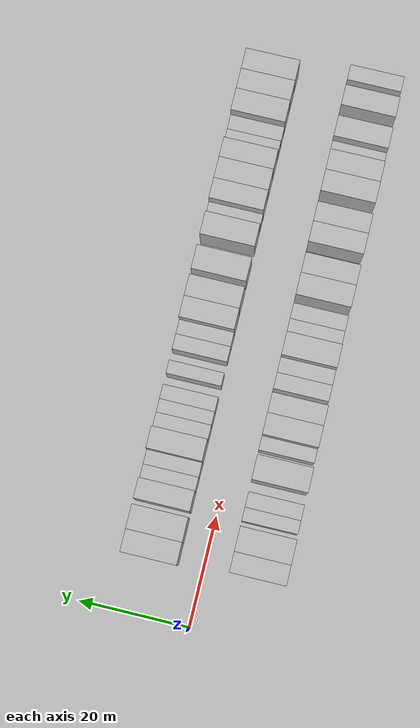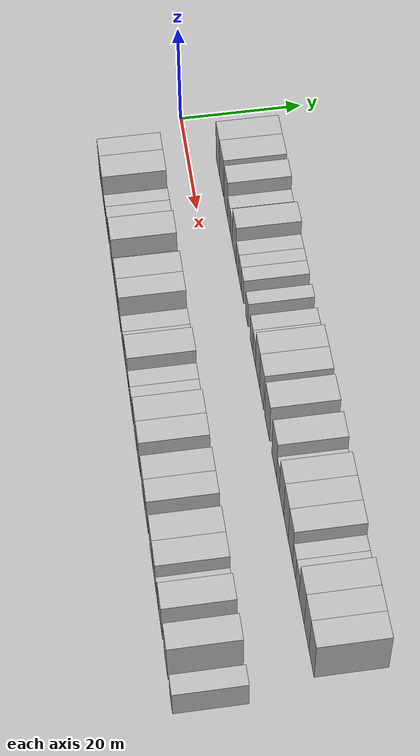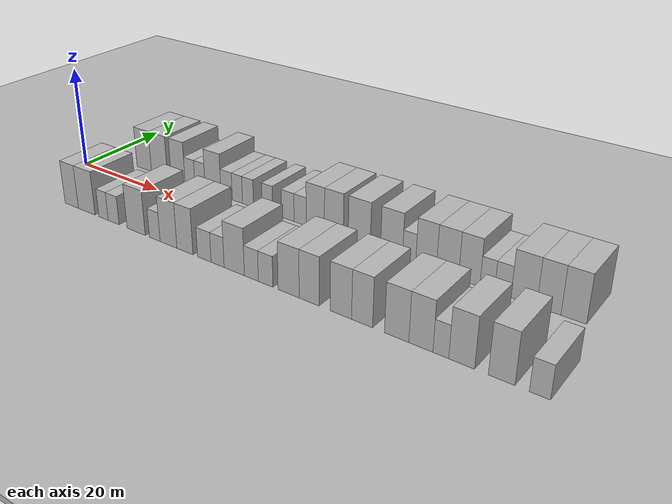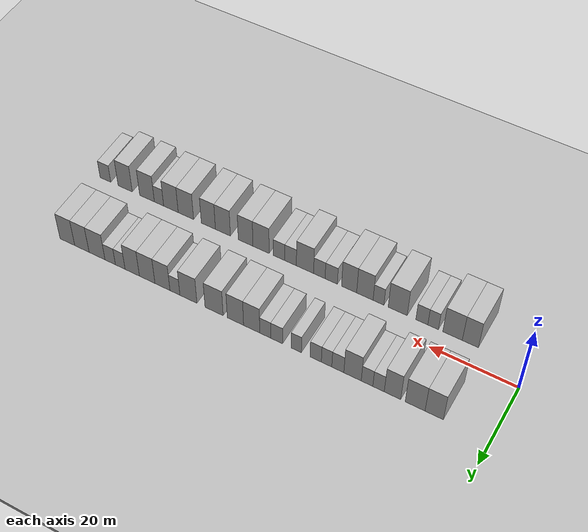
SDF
<sdf version="1.6">
 <world name="default">
  <include><name>ground_plane_1</name><uri>model://HANNAS_ground_plane</uri></include>
  <include>
   <name>ground_plane_2</name>
   <uri>model://HANNAS_ground_plane</uri>
   <pose>100 0 0  0 0 0</pose>
  </include>
  <model name="building_1">
   <static>1</static>
   <pose>12.0045 9.5000 0 0.000000 0.000000 1.570796</pose>
   <link name="link">
    <pose>0 0 4.50 0 0 0</pose>
    <collision name="collision"><geometry><box><size>10.0000 4.0090 9.0000</size></box></geometry></collision>
    <visual name="visual">
     <cast_shadows>0</cast_shadows>
     <geometry><box><size>10.0000 4.0090 9.0000</size></box></geometry>
     <material>
      <script>
       <uri>model://HANNAS_wall/materials/scripts</uri>
       <uri>model://HANNAS_wall/materials/textures</uri>
       <name>vrc/HANNAS_wall</name>
      </script>
     </material>
    </visual>
   </link>
  </model>
  <model name="building_2">
   <static>1</static>
   <pose>16.1920 9.5000 0 0.000000 0.000000 1.570796</pose>
   <link name="link">
    <pose>0 0 4.50 0 0 0</pose>
    <collision name="collision"><geometry><box><size>10.0000 4.3661 9.0000</size></box></geometry></collision>
    <visual name="visual">
     <cast_shadows>0</cast_shadows>
     <geometry><box><size>10.0000 4.3661 9.0000</size></box></geometry>
     <material>
      <script>
       <uri>model://HANNAS_wall/materials/scripts</uri>
       <uri>model://HANNAS_wall/materials/textures</uri>
       <name>vrc/HANNAS_wall</name>
      </script>
     </material>
    </visual>
   </link>
  </model>
  <model name="building_3">
   <static>1</static>
   <pose>21.2087 9.5000 0 0.000000 0.000000 1.570796</pose>
   <link name="link">
    <pose>0 0 4.50 0 0 0</pose>
    <collision name="collision"><geometry><box><size>10.0000 3.6673 9.0000</size></box></geometry></collision>
    <visual name="visual">
     <cast_shadows>0</cast_shadows>
     <geometry><box><size>10.0000 3.6673 9.0000</size></box></geometry>
     <material>
      <script>
       <uri>model://HANNAS_wall/materials/scripts</uri>
       <uri>model://HANNAS_wall/materials/textures</uri>
       <name>vrc/HANNAS_wall</name>
      </script>
     </material>
    </visual>
   </link>
  </model>
  <model name="building_4">
   <static>1</static>
   <pose>24.3245 9.5000 0 0.000000 0.000000 1.570796</pose>
   <link name="link">
    <pose>0 0 3.00 0 0 0</pose>
    <collision name="collision"><geometry><box><size>10.0000 2.5643 6.0000</size></box></geometry></collision>
    <visual name="visual">
     <cast_shadows>0</cast_shadows>
     <geometry><box><size>10.0000 2.5643 6.0000</size></box></geometry>
     <material>
      <script>
       <uri>model://HANNAS_wall/materials/scripts</uri>
       <uri>model://HANNAS_wall/materials/textures</uri>
       <name>vrc/HANNAS_wall</name>
      </script>
     </material>
    </visual>
   </link>
  </model>
  <model name="building_5">
   <static>1</static>
   <pose>26.9163 9.5000 0 0.000000 0.000000 1.570796</pose>
   <link name="link">
    <pose>0 0 3.00 0 0 0</pose>
    <collision name="collision"><geometry><box><size>10.0000 2.6194 6.0000</size></box></geometry></collision>
    <visual name="visual">
     <cast_shadows>0</cast_shadows>
     <geometry><box><size>10.0000 2.6194 6.0000</size></box></geometry>
     <material>
      <script>
       <uri>model://HANNAS_wall/materials/scripts</uri>
       <uri>model://HANNAS_wall/materials/textures</uri>
       <name>vrc/HANNAS_wall</name>
      </script>
     </material>
    </visual>
   </link>
  </model>
  <model name="building_6">
   <static>1</static>
   <pose>30.2056 9.5000 0 0.000000 0.000000 1.570796</pose>
   <link name="link">
    <pose>0 0 4.50 0 0 0</pose>
    <collision name="collision"><geometry><box><size>10.0000 3.9591 9.0000</size></box></geometry></collision>
    <visual name="visual">
     <cast_shadows>0</cast_shadows>
     <geometry><box><size>10.0000 3.9591 9.0000</size></box></geometry>
     <material>
      <script>
       <uri>model://HANNAS_wall/materials/scripts</uri>
       <uri>model://HANNAS_wall/materials/textures</uri>
       <name>vrc/HANNAS_wall</name>
      </script>
     </material>
    </visual>
   </link>
  </model>
  <model name="building_7">
   <static>1</static>
   <pose>33.5692 9.5000 0 0.000000 0.000000 1.570796</pose>
   <link name="link">
    <pose>0 0 3.00 0 0 0</pose>
    <collision name="collision"><geometry><box><size>10.0000 2.7680 6.0000</size></box></geometry></collision>
    <visual name="visual">
     <cast_shadows>0</cast_shadows>
     <geometry><box><size>10.0000 2.7680 6.0000</size></box></geometry>
     <material>
      <script>
       <uri>model://HANNAS_wall/materials/scripts</uri>
       <uri>model://HANNAS_wall/materials/textures</uri>
       <name>vrc/HANNAS_wall</name>
      </script>
     </material>
    </visual>
   </link>
  </model>
  <model name="building_8">
   <static>1</static>
   <pose>36.1631 9.5000 0 0.000000 0.000000 1.570796</pose>
   <link name="link">
    <pose>0 0 3.00 0 0 0</pose>
    <collision name="collision"><geometry><box><size>10.0000 2.4198 6.0000</size></box></geometry></collision>
    <visual name="visual">
     <cast_shadows>0</cast_shadows>
     <geometry><box><size>10.0000 2.4198 6.0000</size></box></geometry>
     <material>
      <script>
       <uri>model://HANNAS_wall/materials/scripts</uri>
       <uri>model://HANNAS_wall/materials/textures</uri>
       <name>vrc/HANNAS_wall</name>
      </script>
     </material>
    </visual>
   </link>
  </model>
  <model name="building_9">
   <static>1</static>
   <pose>38.6890 9.5000 0 0.000000 0.000000 1.570796</pose>
   <link name="link">
    <pose>0 0 3.00 0 0 0</pose>
    <collision name="collision"><geometry><box><size>10.0000 2.6320 6.0000</size></box></geometry></collision>
    <visual name="visual">
     <cast_shadows>0</cast_shadows>
     <geometry><box><size>10.0000 2.6320 6.0000</size></box></geometry>
     <material>
      <script>
       <uri>model://HANNAS_wall/materials/scripts</uri>
       <uri>model://HANNAS_wall/materials/textures</uri>
       <name>vrc/HANNAS_wall</name>
      </script>
     </material>
    </visual>
   </link>
  </model>
  <model name="building_10">
   <static>1</static>
   <pose>43.2170 9.5000 0 0.000000 0.000000 1.570796</pose>
   <link name="link">
    <pose>0 0 3.00 0 0 0</pose>
    <collision name="collision"><geometry><box><size>10.0000 2.4241 6.0000</size></box></geometry></collision>
    <visual name="visual">
     <cast_shadows>0</cast_shadows>
     <geometry><box><size>10.0000 2.4241 6.0000</size></box></geometry>
     <material>
      <script>
       <uri>model://HANNAS_wall/materials/scripts</uri>
       <uri>model://HANNAS_wall/materials/textures</uri>
       <name>vrc/HANNAS_wall</name>
      </script>
     </material>
    </visual>
   </link>
  </model>
  <model name="building_11">
   <static>1</static>
   <pose>47.8303 9.5000 0 0.000000 0.000000 1.570796</pose>
   <link name="link">
    <pose>0 0 3.00 0 0 0</pose>
    <collision name="collision"><geometry><box><size>10.0000 2.8025 6.0000</size></box></geometry></collision>
    <visual name="visual">
     <cast_shadows>0</cast_shadows>
     <geometry><box><size>10.0000 2.8025 6.0000</size></box></geometry>
     <material>
      <script>
       <uri>model://HANNAS_wall/materials/scripts</uri>
       <uri>model://HANNAS_wall/materials/textures</uri>
       <name>vrc/HANNAS_wall</name>
      </script>
     </material>
    </visual>
   </link>
  </model>
  <model name="building_12">
   <static>1</static>
   <pose>50.5448 9.5000 0 0.000000 0.000000 1.570796</pose>
   <link name="link">
    <pose>0 0 3.00 0 0 0</pose>
    <collision name="collision"><geometry><box><size>10.0000 2.6265 6.0000</size></box></geometry></collision>
    <visual name="visual">
     <cast_shadows>0</cast_shadows>
     <geometry><box><size>10.0000 2.6265 6.0000</size></box></geometry>
     <material>
      <script>
       <uri>model://HANNAS_wall/materials/scripts</uri>
       <uri>model://HANNAS_wall/materials/textures</uri>
       <name>vrc/HANNAS_wall</name>
      </script>
     </material>
    </visual>
   </link>
  </model>
  <model name="building_13">
   <static>1</static>
   <pose>53.8044 9.5000 0 0.000000 0.000000 1.570796</pose>
   <link name="link">
    <pose>0 0 4.50 0 0 0</pose>
    <collision name="collision"><geometry><box><size>10.0000 3.8926 9.0000</size></box></geometry></collision>
    <visual name="visual">
     <cast_shadows>0</cast_shadows>
     <geometry><box><size>10.0000 3.8926 9.0000</size></box></geometry>
     <material>
      <script>
       <uri>model://HANNAS_wall/materials/scripts</uri>
       <uri>model://HANNAS_wall/materials/textures</uri>
       <name>vrc/HANNAS_wall</name>
      </script>
     </material>
    </visual>
   </link>
  </model>
  <model name="building_14">
   <static>1</static>
   <pose>57.7253 9.5000 0 0.000000 0.000000 1.570796</pose>
   <link name="link">
    <pose>0 0 4.50 0 0 0</pose>
    <collision name="collision"><geometry><box><size>10.0000 3.9492 9.0000</size></box></geometry></collision>
    <visual name="visual">
     <cast_shadows>0</cast_shadows>
     <geometry><box><size>10.0000 3.9492 9.0000</size></box></geometry>
     <material>
      <script>
       <uri>model://HANNAS_wall/materials/scripts</uri>
       <uri>model://HANNAS_wall/materials/textures</uri>
       <name>vrc/HANNAS_wall</name>
      </script>
     </material>
    </visual>
   </link>
  </model>
  <model name="building_15">
   <static>1</static>
   <pose>62.9188 9.5000 0 0.000000 0.000000 1.570796</pose>
   <link name="link">
    <pose>0 0 4.50 0 0 0</pose>
    <collision name="collision"><geometry><box><size>10.0000 4.4379 9.0000</size></box></geometry></collision>
    <visual name="visual">
     <cast_shadows>0</cast_shadows>
     <geometry><box><size>10.0000 4.4379 9.0000</size></box></geometry>
     <material>
      <script>
       <uri>model://HANNAS_wall/materials/scripts</uri>
       <uri>model://HANNAS_wall/materials/textures</uri>
       <name>vrc/HANNAS_wall</name>
      </script>
     </material>
    </visual>
   </link>
  </model>
  <model name="building_16">
   <static>1</static>
   <pose>69.2543 9.5000 0 0.000000 0.000000 1.570796</pose>
   <link name="link">
    <pose>0 0 4.50 0 0 0</pose>
    <collision name="collision"><geometry><box><size>10.0000 4.2331 9.0000</size></box></geometry></collision>
    <visual name="visual">
     <cast_shadows>0</cast_shadows>
     <geometry><box><size>10.0000 4.2331 9.0000</size></box></geometry>
     <material>
      <script>
       <uri>model://HANNAS_wall/materials/scripts</uri>
       <uri>model://HANNAS_wall/materials/textures</uri>
       <name>vrc/HANNAS_wall</name>
      </script>
     </material>
    </visual>
   </link>
  </model>
  <model name="building_17">
   <static>1</static>
   <pose>72.6155 9.5000 0 0.000000 0.000000 1.570796</pose>
   <link name="link">
    <pose>0 0 3.00 0 0 0</pose>
    <collision name="collision"><geometry><box><size>10.0000 2.4891 6.0000</size></box></geometry></collision>
    <visual name="visual">
     <cast_shadows>0</cast_shadows>
     <geometry><box><size>10.0000 2.4891 6.0000</size></box></geometry>
     <material>
      <script>
       <uri>model://HANNAS_wall/materials/scripts</uri>
       <uri>model://HANNAS_wall/materials/textures</uri>
       <name>vrc/HANNAS_wall</name>
      </script>
     </material>
    </visual>
   </link>
  </model>
  <model name="building_18">
   <static>1</static>
   <pose>75.7572 9.5000 0 0.000000 0.000000 1.570796</pose>
   <link name="link">
    <pose>0 0 4.50 0 0 0</pose>
    <collision name="collision"><geometry><box><size>10.0000 3.7943 9.0000</size></box></geometry></collision>
    <visual name="visual">
     <cast_shadows>0</cast_shadows>
     <geometry><box><size>10.0000 3.7943 9.0000</size></box></geometry>
     <material>
      <script>
       <uri>model://HANNAS_wall/materials/scripts</uri>
       <uri>model://HANNAS_wall/materials/textures</uri>
       <name>vrc/HANNAS_wall</name>
      </script>
     </material>
    </visual>
   </link>
  </model>
  <model name="building_19">
   <static>1</static>
   <pose>79.6302 9.5000 0 0.000000 0.000000 1.570796</pose>
   <link name="link">
    <pose>0 0 4.50 0 0 0</pose>
    <collision name="collision"><geometry><box><size>10.0000 3.9518 9.0000</size></box></geometry></collision>
    <visual name="visual">
     <cast_shadows>0</cast_shadows>
     <geometry><box><size>10.0000 3.9518 9.0000</size></box></geometry>
     <material>
      <script>
       <uri>model://HANNAS_wall/materials/scripts</uri>
       <uri>model://HANNAS_wall/materials/textures</uri>
       <name>vrc/HANNAS_wall</name>
      </script>
     </material>
    </visual>
   </link>
  </model>
  <model name="building_20">
   <static>1</static>
   <pose>83.4527 9.5000 0 0.000000 0.000000 1.570796</pose>
   <link name="link">
    <pose>0 0 4.50 0 0 0</pose>
    <collision name="collision"><geometry><box><size>10.0000 3.6931 9.0000</size></box></geometry></collision>
    <visual name="visual">
     <cast_shadows>0</cast_shadows>
     <geometry><box><size>10.0000 3.6931 9.0000</size></box></geometry>
     <material>
      <script>
       <uri>model://HANNAS_wall/materials/scripts</uri>
       <uri>model://HANNAS_wall/materials/textures</uri>
       <name>vrc/HANNAS_wall</name>
      </script>
     </material>
    </visual>
   </link>
  </model>
  <model name="building_21">
   <static>1</static>
   <pose>86.5423 9.5000 0 0.000000 0.000000 1.570796</pose>
   <link name="link">
    <pose>0 0 3.00 0 0 0</pose>
    <collision name="collision"><geometry><box><size>10.0000 2.4860 6.0000</size></box></geometry></collision>
    <visual name="visual">
     <cast_shadows>0</cast_shadows>
     <geometry><box><size>10.0000 2.4860 6.0000</size></box></geometry>
     <material>
      <script>
       <uri>model://HANNAS_wall/materials/scripts</uri>
       <uri>model://HANNAS_wall/materials/textures</uri>
       <name>vrc/HANNAS_wall</name>
      </script>
     </material>
    </visual>
   </link>
  </model>
  <model name="building_22">
   <static>1</static>
   <pose>89.1378 9.5000 0 0.000000 0.000000 1.570796</pose>
   <link name="link">
    <pose>0 0 3.00 0 0 0</pose>
    <collision name="collision"><geometry><box><size>10.0000 2.7049 6.0000</size></box></geometry></collision>
    <visual name="visual">
     <cast_shadows>0</cast_shadows>
     <geometry><box><size>10.0000 2.7049 6.0000</size></box></geometry>
     <material>
      <script>
       <uri>model://HANNAS_wall/materials/scripts</uri>
       <uri>model://HANNAS_wall/materials/textures</uri>
       <name>vrc/HANNAS_wall</name>
      </script>
     </material>
    </visual>
   </link>
  </model>
  <model name="building_23">
   <static>1</static>
   <pose>92.5736 9.5000 0 0.000000 0.000000 1.570796</pose>
   <link name="link">
    <pose>0 0 4.50 0 0 0</pose>
    <collision name="collision"><geometry><box><size>10.0000 4.1667 9.0000</size></box></geometry></collision>
    <visual name="visual">
     <cast_shadows>0</cast_shadows>
     <geometry><box><size>10.0000 4.1667 9.0000</size></box></geometry>
     <material>
      <script>
       <uri>model://HANNAS_wall/materials/scripts</uri>
       <uri>model://HANNAS_wall/materials/textures</uri>
       <name>vrc/HANNAS_wall</name>
      </script>
     </material>
    </visual>
   </link>
  </model>
  <model name="building_24">
   <static>1</static>
   <pose>96.5496 9.5000 0 0.000000 0.000000 1.570796</pose>
   <link name="link">
    <pose>0 0 4.50 0 0 0</pose>
    <collision name="collision"><geometry><box><size>10.0000 3.7852 9.0000</size></box></geometry></collision>
    <visual name="visual">
     <cast_shadows>0</cast_shadows>
     <geometry><box><size>10.0000 3.7852 9.0000</size></box></geometry>
     <material>
      <script>
       <uri>model://HANNAS_wall/materials/scripts</uri>
       <uri>model://HANNAS_wall/materials/textures</uri>
       <name>vrc/HANNAS_wall</name>
      </script>
     </material>
    </visual>
   </link>
  </model>
  <model name="building_25">
   <static>1</static>
   <pose>100.3925 9.5000 0 0.000000 0.000000 1.570796</pose>
   <link name="link">
    <pose>0 0 4.50 0 0 0</pose>
    <collision name="collision"><geometry><box><size>10.0000 3.9007 9.0000</size></box></geometry></collision>
    <visual name="visual">
     <cast_shadows>0</cast_shadows>
     <geometry><box><size>10.0000 3.9007 9.0000</size></box></geometry>
     <material>
      <script>
       <uri>model://HANNAS_wall/materials/scripts</uri>
       <uri>model://HANNAS_wall/materials/textures</uri>
       <name>vrc/HANNAS_wall</name>
      </script>
     </material>
    </visual>
   </link>
  </model>
  <model name="building_50">
   <static>1</static>
   <pose>12.8146 -9.5000 0 0.000000 0.000000 1.570796</pose>
   <link name="link">
    <pose>0 0 4.50 0 0 0</pose>
    <collision name="collision"><geometry><box><size>10.0000 3.6291 9.0000</size></box></geometry></collision>
    <visual name="visual">
     <cast_shadows>0</cast_shadows>
     <geometry><box><size>10.0000 3.6291 9.0000</size></box></geometry>
     <material>
      <script>
       <uri>model://HANNAS_wall/materials/scripts</uri>
       <uri>model://HANNAS_wall/materials/textures</uri>
       <name>vrc/HANNAS_wall</name>
      </script>
     </material>
    </visual>
   </link>
  </model>
  <model name="building_51">
   <static>1</static>
   <pose>16.8435 -9.5000 0 0.000000 0.000000 1.570796</pose>
   <link name="link">
    <pose>0 0 4.50 0 0 0</pose>
    <collision name="collision"><geometry><box><size>10.0000 4.4288 9.0000</size></box></geometry></collision>
    <visual name="visual">
     <cast_shadows>0</cast_shadows>
     <geometry><box><size>10.0000 4.4288 9.0000</size></box></geometry>
     <material>
      <script>
       <uri>model://HANNAS_wall/materials/scripts</uri>
       <uri>model://HANNAS_wall/materials/textures</uri>
       <name>vrc/HANNAS_wall</name>
      </script>
     </material>
    </visual>
   </link>
  </model>
  <model name="building_52">
   <static>1</static>
   <pose>21.2728 -9.5000 0 0.000000 0.000000 1.570796</pose>
   <link name="link">
    <pose>0 0 3.00 0 0 0</pose>
    <collision name="collision"><geometry><box><size>10.0000 2.4298 6.0000</size></box></geometry></collision>
    <visual name="visual">
     <cast_shadows>0</cast_shadows>
     <geometry><box><size>10.0000 2.4298 6.0000</size></box></geometry>
     <material>
      <script>
       <uri>model://HANNAS_wall/materials/scripts</uri>
       <uri>model://HANNAS_wall/materials/textures</uri>
       <name>vrc/HANNAS_wall</name>
      </script>
     </material>
    </visual>
   </link>
  </model>
  <model name="building_53">
   <static>1</static>
   <pose>23.8699 -9.5000 0 0.000000 0.000000 1.570796</pose>
   <link name="link">
    <pose>0 0 3.00 0 0 0</pose>
    <collision name="collision"><geometry><box><size>10.0000 2.7645 6.0000</size></box></geometry></collision>
    <visual name="visual">
     <cast_shadows>0</cast_shadows>
     <geometry><box><size>10.0000 2.7645 6.0000</size></box></geometry>
     <material>
      <script>
       <uri>model://HANNAS_wall/materials/scripts</uri>
       <uri>model://HANNAS_wall/materials/textures</uri>
       <name>vrc/HANNAS_wall</name>
      </script>
     </material>
    </visual>
   </link>
  </model>
  <model name="building_54">
   <static>1</static>
   <pose>29.4754 -9.5000 0 0.000000 0.000000 1.570796</pose>
   <link name="link">
    <pose>0 0 4.50 0 0 0</pose>
    <collision name="collision"><geometry><box><size>10.0000 4.4463 9.0000</size></box></geometry></collision>
    <visual name="visual">
     <cast_shadows>0</cast_shadows>
     <geometry><box><size>10.0000 4.4463 9.0000</size></box></geometry>
     <material>
      <script>
       <uri>model://HANNAS_wall/materials/scripts</uri>
       <uri>model://HANNAS_wall/materials/textures</uri>
       <name>vrc/HANNAS_wall</name>
      </script>
     </material>
    </visual>
   </link>
  </model>
  <model name="building_55">
   <static>1</static>
   <pose>33.9761 -9.5000 0 0.000000 0.000000 1.570796</pose>
   <link name="link">
    <pose>0 0 3.00 0 0 0</pose>
    <collision name="collision"><geometry><box><size>10.0000 2.5552 6.0000</size></box></geometry></collision>
    <visual name="visual">
     <cast_shadows>0</cast_shadows>
     <geometry><box><size>10.0000 2.5552 6.0000</size></box></geometry>
     <material>
      <script>
       <uri>model://HANNAS_wall/materials/scripts</uri>
       <uri>model://HANNAS_wall/materials/textures</uri>
       <name>vrc/HANNAS_wall</name>
      </script>
     </material>
    </visual>
   </link>
  </model>
  <model name="building_56">
   <static>1</static>
   <pose>37.2035 -9.5000 0 0.000000 0.000000 1.570796</pose>
   <link name="link">
    <pose>0 0 4.50 0 0 0</pose>
    <collision name="collision"><geometry><box><size>10.0000 3.8996 9.0000</size></box></geometry></collision>
    <visual name="visual">
     <cast_shadows>0</cast_shadows>
     <geometry><box><size>10.0000 3.8996 9.0000</size></box></geometry>
     <material>
      <script>
       <uri>model://HANNAS_wall/materials/scripts</uri>
       <uri>model://HANNAS_wall/materials/textures</uri>
       <name>vrc/HANNAS_wall</name>
      </script>
     </material>
    </visual>
   </link>
  </model>
  <model name="building_57">
   <static>1</static>
   <pose>40.9713 -9.5000 0 0.000000 0.000000 1.570796</pose>
   <link name="link">
    <pose>0 0 4.50 0 0 0</pose>
    <collision name="collision"><geometry><box><size>10.0000 3.6360 9.0000</size></box></geometry></collision>
    <visual name="visual">
     <cast_shadows>0</cast_shadows>
     <geometry><box><size>10.0000 3.6360 9.0000</size></box></geometry>
     <material>
      <script>
       <uri>model://HANNAS_wall/materials/scripts</uri>
       <uri>model://HANNAS_wall/materials/textures</uri>
       <name>vrc/HANNAS_wall</name>
      </script>
     </material>
    </visual>
   </link>
  </model>
  <model name="building_58">
   <static>1</static>
   <pose>45.2743 -9.5000 0 0.000000 0.000000 1.570796</pose>
   <link name="link">
    <pose>0 0 3.00 0 0 0</pose>
    <collision name="collision"><geometry><box><size>10.0000 2.9699 6.0000</size></box></geometry></collision>
    <visual name="visual">
     <cast_shadows>0</cast_shadows>
     <geometry><box><size>10.0000 2.9699 6.0000</size></box></geometry>
     <material>
      <script>
       <uri>model://HANNAS_wall/materials/scripts</uri>
       <uri>model://HANNAS_wall/materials/textures</uri>
       <name>vrc/HANNAS_wall</name>
      </script>
     </material>
    </visual>
   </link>
  </model>
  <model name="building_59">
   <static>1</static>
   <pose>48.1561 -9.5000 0 0.000000 0.000000 1.570796</pose>
   <link name="link">
    <pose>0 0 3.00 0 0 0</pose>
    <collision name="collision"><geometry><box><size>10.0000 2.7938 6.0000</size></box></geometry></collision>
    <visual name="visual">
     <cast_shadows>0</cast_shadows>
     <geometry><box><size>10.0000 2.7938 6.0000</size></box></geometry>
     <material>
      <script>
       <uri>model://HANNAS_wall/materials/scripts</uri>
       <uri>model://HANNAS_wall/materials/textures</uri>
       <name>vrc/HANNAS_wall</name>
      </script>
     </material>
    </visual>
   </link>
  </model>
  <model name="building_60">
   <static>1</static>
   <pose>51.6716 -9.5000 0 0.000000 0.000000 1.570796</pose>
   <link name="link">
    <pose>0 0 4.50 0 0 0</pose>
    <collision name="collision"><geometry><box><size>10.0000 4.2370 9.0000</size></box></geometry></collision>
    <visual name="visual">
     <cast_shadows>0</cast_shadows>
     <geometry><box><size>10.0000 4.2370 9.0000</size></box></geometry>
     <material>
      <script>
       <uri>model://HANNAS_wall/materials/scripts</uri>
       <uri>model://HANNAS_wall/materials/textures</uri>
       <name>vrc/HANNAS_wall</name>
      </script>
     </material>
    </visual>
   </link>
  </model>
  <model name="building_61">
   <static>1</static>
   <pose>55.2164 -9.5000 0 0.000000 0.000000 1.570796</pose>
   <link name="link">
    <pose>0 0 3.00 0 0 0</pose>
    <collision name="collision"><geometry><box><size>10.0000 2.8526 6.0000</size></box></geometry></collision>
    <visual name="visual">
     <cast_shadows>0</cast_shadows>
     <geometry><box><size>10.0000 2.8526 6.0000</size></box></geometry>
     <material>
      <script>
       <uri>model://HANNAS_wall/materials/scripts</uri>
       <uri>model://HANNAS_wall/materials/textures</uri>
       <name>vrc/HANNAS_wall</name>
      </script>
     </material>
    </visual>
   </link>
  </model>
  <model name="building_62">
   <static>1</static>
   <pose>58.0870 -9.5000 0 0.000000 0.000000 1.570796</pose>
   <link name="link">
    <pose>0 0 3.00 0 0 0</pose>
    <collision name="collision"><geometry><box><size>10.0000 2.8887 6.0000</size></box></geometry></collision>
    <visual name="visual">
     <cast_shadows>0</cast_shadows>
     <geometry><box><size>10.0000 2.8887 6.0000</size></box></geometry>
     <material>
      <script>
       <uri>model://HANNAS_wall/materials/scripts</uri>
       <uri>model://HANNAS_wall/materials/textures</uri>
       <name>vrc/HANNAS_wall</name>
      </script>
     </material>
    </visual>
   </link>
  </model>
  <model name="building_63">
   <static>1</static>
   <pose>62.5631 -9.5000 0 0.000000 0.000000 1.570796</pose>
   <link name="link">
    <pose>0 0 4.50 0 0 0</pose>
    <collision name="collision"><geometry><box><size>10.0000 4.0635 9.0000</size></box></geometry></collision>
    <visual name="visual">
     <cast_shadows>0</cast_shadows>
     <geometry><box><size>10.0000 4.0635 9.0000</size></box></geometry>
     <material>
      <script>
       <uri>model://HANNAS_wall/materials/scripts</uri>
       <uri>model://HANNAS_wall/materials/textures</uri>
       <name>vrc/HANNAS_wall</name>
      </script>
     </material>
    </visual>
   </link>
  </model>
  <model name="building_64">
   <static>1</static>
   <pose>66.4537 -9.5000 0 0.000000 0.000000 1.570796</pose>
   <link name="link">
    <pose>0 0 4.50 0 0 0</pose>
    <collision name="collision"><geometry><box><size>10.0000 3.7177 9.0000</size></box></geometry></collision>
    <visual name="visual">
     <cast_shadows>0</cast_shadows>
     <geometry><box><size>10.0000 3.7177 9.0000</size></box></geometry>
     <material>
      <script>
       <uri>model://HANNAS_wall/materials/scripts</uri>
       <uri>model://HANNAS_wall/materials/textures</uri>
       <name>vrc/HANNAS_wall</name>
      </script>
     </material>
    </visual>
   </link>
  </model>
  <model name="building_65">
   <static>1</static>
   <pose>72.2322 -9.5000 0 0.000000 0.000000 1.570796</pose>
   <link name="link">
    <pose>0 0 4.50 0 0 0</pose>
    <collision name="collision"><geometry><box><size>10.0000 3.8394 9.0000</size></box></geometry></collision>
    <visual name="visual">
     <cast_shadows>0</cast_shadows>
     <geometry><box><size>10.0000 3.8394 9.0000</size></box></geometry>
     <material>
      <script>
       <uri>model://HANNAS_wall/materials/scripts</uri>
       <uri>model://HANNAS_wall/materials/textures</uri>
       <name>vrc/HANNAS_wall</name>
      </script>
     </material>
    </visual>
   </link>
  </model>
  <model name="building_66">
   <static>1</static>
   <pose>75.9771 -9.5000 0 0.000000 0.000000 1.570796</pose>
   <link name="link">
    <pose>0 0 4.50 0 0 0</pose>
    <collision name="collision"><geometry><box><size>10.0000 3.6504 9.0000</size></box></geometry></collision>
    <visual name="visual">
     <cast_shadows>0</cast_shadows>
     <geometry><box><size>10.0000 3.6504 9.0000</size></box></geometry>
     <material>
      <script>
       <uri>model://HANNAS_wall/materials/scripts</uri>
       <uri>model://HANNAS_wall/materials/textures</uri>
       <name>vrc/HANNAS_wall</name>
      </script>
     </material>
    </visual>
   </link>
  </model>
  <model name="building_67">
   <static>1</static>
   <pose>81.8132 -9.5000 0 0.000000 0.000000 1.570796</pose>
   <link name="link">
    <pose>0 0 4.50 0 0 0</pose>
    <collision name="collision"><geometry><box><size>10.0000 4.0218 9.0000</size></box></geometry></collision>
    <visual name="visual">
     <cast_shadows>0</cast_shadows>
     <geometry><box><size>10.0000 4.0218 9.0000</size></box></geometry>
     <material>
      <script>
       <uri>model://HANNAS_wall/materials/scripts</uri>
       <uri>model://HANNAS_wall/materials/textures</uri>
       <name>vrc/HANNAS_wall</name>
      </script>
     </material>
    </visual>
   </link>
  </model>
  <model name="building_68">
   <static>1</static>
   <pose>85.7469 -9.5000 0 0.000000 0.000000 1.570796</pose>
   <link name="link">
    <pose>0 0 4.50 0 0 0</pose>
    <collision name="collision"><geometry><box><size>10.0000 3.8455 9.0000</size></box></geometry></collision>
    <visual name="visual">
     <cast_shadows>0</cast_shadows>
     <geometry><box><size>10.0000 3.8455 9.0000</size></box></geometry>
     <material>
      <script>
       <uri>model://HANNAS_wall/materials/scripts</uri>
       <uri>model://HANNAS_wall/materials/textures</uri>
       <name>vrc/HANNAS_wall</name>
      </script>
     </material>
    </visual>
   </link>
  </model>
  <model name="building_69">
   <static>1</static>
   <pose>88.8962 -9.5000 0 0.000000 0.000000 1.570796</pose>
   <link name="link">
    <pose>0 0 3.00 0 0 0</pose>
    <collision name="collision"><geometry><box><size>10.0000 2.4532 6.0000</size></box></geometry></collision>
    <visual name="visual">
     <cast_shadows>0</cast_shadows>
     <geometry><box><size>10.0000 2.4532 6.0000</size></box></geometry>
     <material>
      <script>
       <uri>model://HANNAS_wall/materials/scripts</uri>
       <uri>model://HANNAS_wall/materials/textures</uri>
       <name>vrc/HANNAS_wall</name>
      </script>
     </material>
    </visual>
   </link>
  </model>
  <model name="building_70">
   <static>1</static>
   <pose>92.0865 -9.5000 0 0.000000 0.000000 1.570796</pose>
   <link name="link">
    <pose>0 0 4.50 0 0 0</pose>
    <collision name="collision"><geometry><box><size>10.0000 3.9273 9.0000</size></box></geometry></collision>
    <visual name="visual">
     <cast_shadows>0</cast_shadows>
     <geometry><box><size>10.0000 3.9273 9.0000</size></box></geometry>
     <material>
      <script>
       <uri>model://HANNAS_wall/materials/scripts</uri>
       <uri>model://HANNAS_wall/materials/textures</uri>
       <name>vrc/HANNAS_wall</name>
      </script>
     </material>
    </visual>
   </link>
  </model>
  <model name="building_71">
   <static>1</static>
   <pose>97.9652 -9.5000 0 0.000000 0.000000 1.570796</pose>
   <link name="link">
    <pose>0 0 4.50 0 0 0</pose>
    <collision name="collision"><geometry><box><size>10.0000 3.8301 9.0000</size></box></geometry></collision>
    <visual name="visual">
     <cast_shadows>0</cast_shadows>
     <geometry><box><size>10.0000 3.8301 9.0000</size></box></geometry>
     <material>
      <script>
       <uri>model://HANNAS_wall/materials/scripts</uri>
       <uri>model://HANNAS_wall/materials/textures</uri>
       <name>vrc/HANNAS_wall</name>
      </script>
     </material>
    </visual>
   </link>
  </model>
  <model name="building_72">
   <static>1</static>
   <pose>103.3385 -9.5000 0 0.000000 0.000000 1.570796</pose>
   <link name="link">
    <pose>0 0 3.00 0 0 0</pose>
    <collision name="collision"><geometry><box><size>10.0000 2.9167 6.0000</size></box></geometry></collision>
    <visual name="visual">
     <cast_shadows>0</cast_shadows>
     <geometry><box><size>10.0000 2.9167 6.0000</size></box></geometry>
     <material>
      <script>
       <uri>model://HANNAS_wall/materials/scripts</uri>
       <uri>model://HANNAS_wall/materials/textures</uri>
       <name>vrc/HANNAS_wall</name>
      </script>
     </material>
    </visual>
   </link>
  </model>
 </world>
</sdf>
